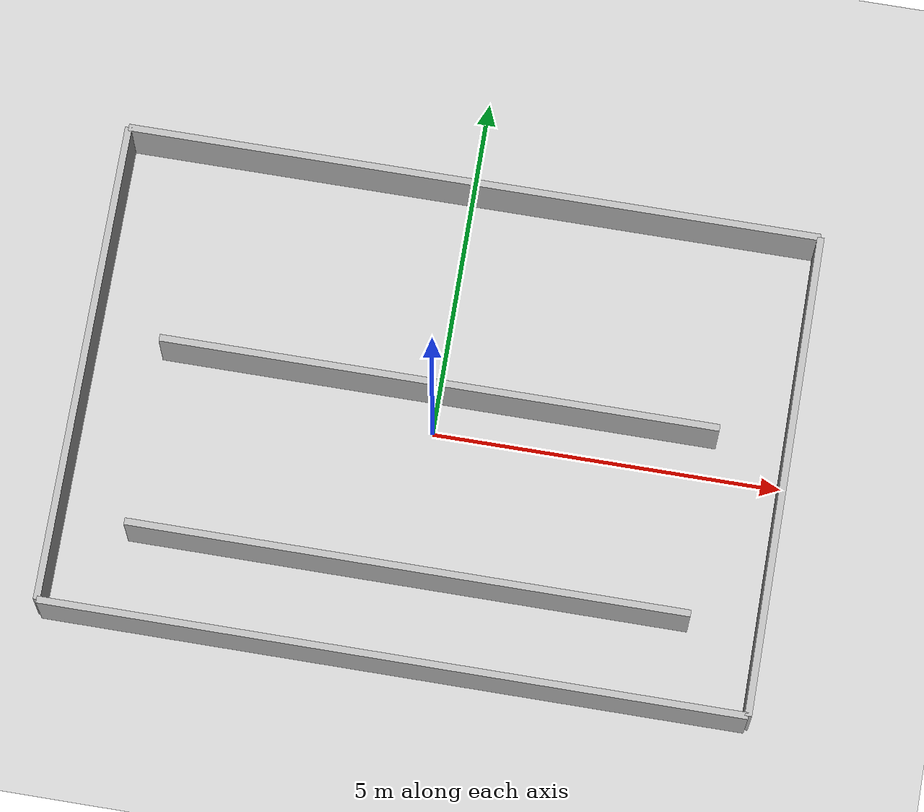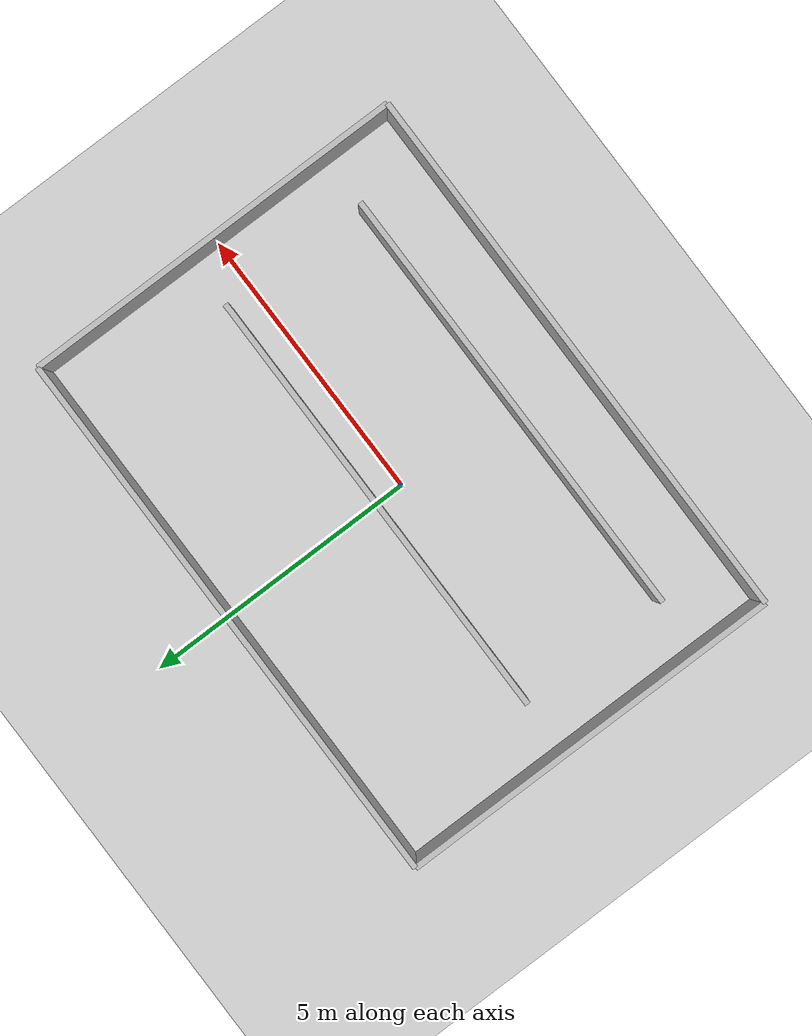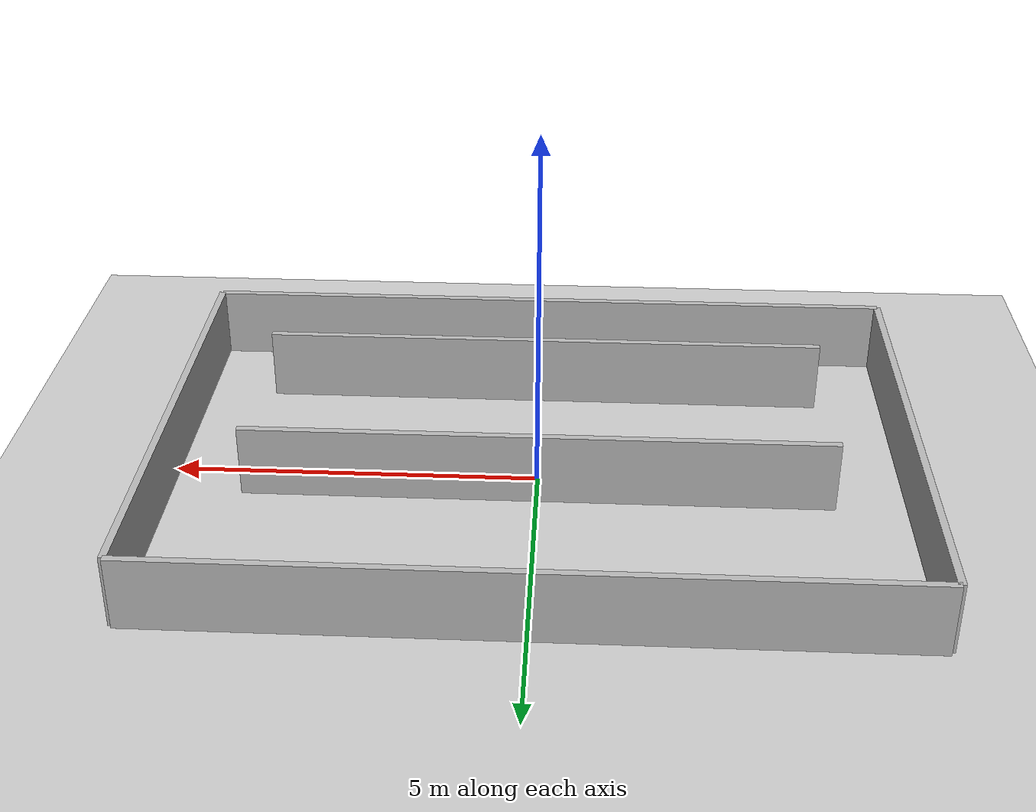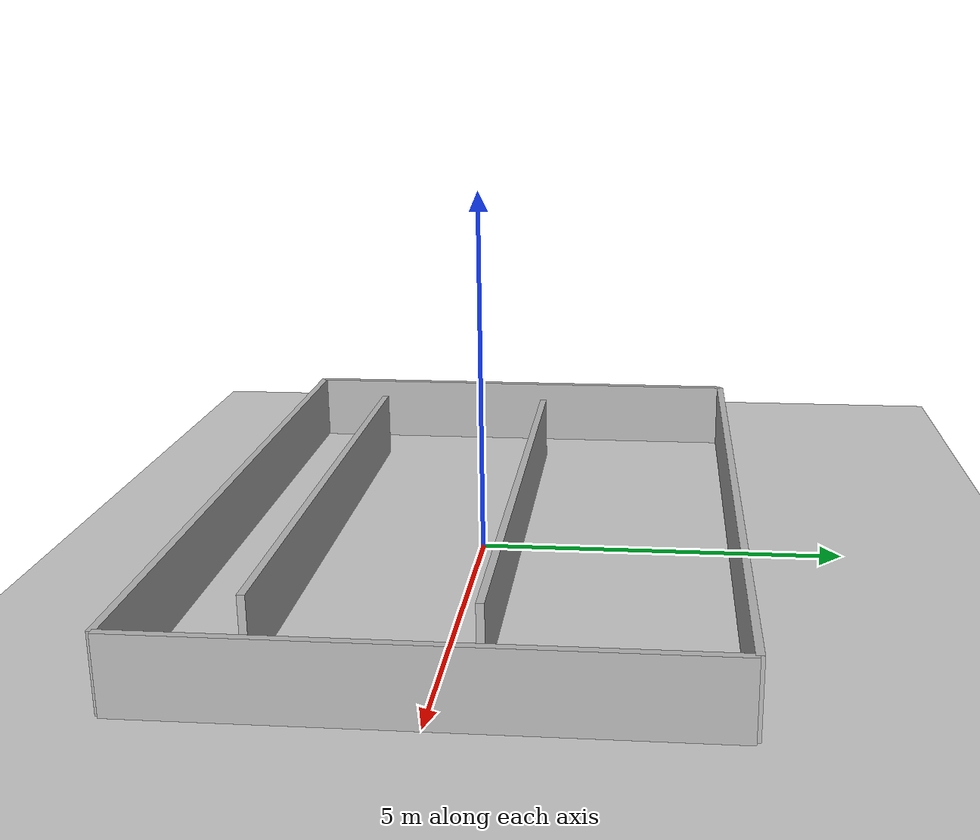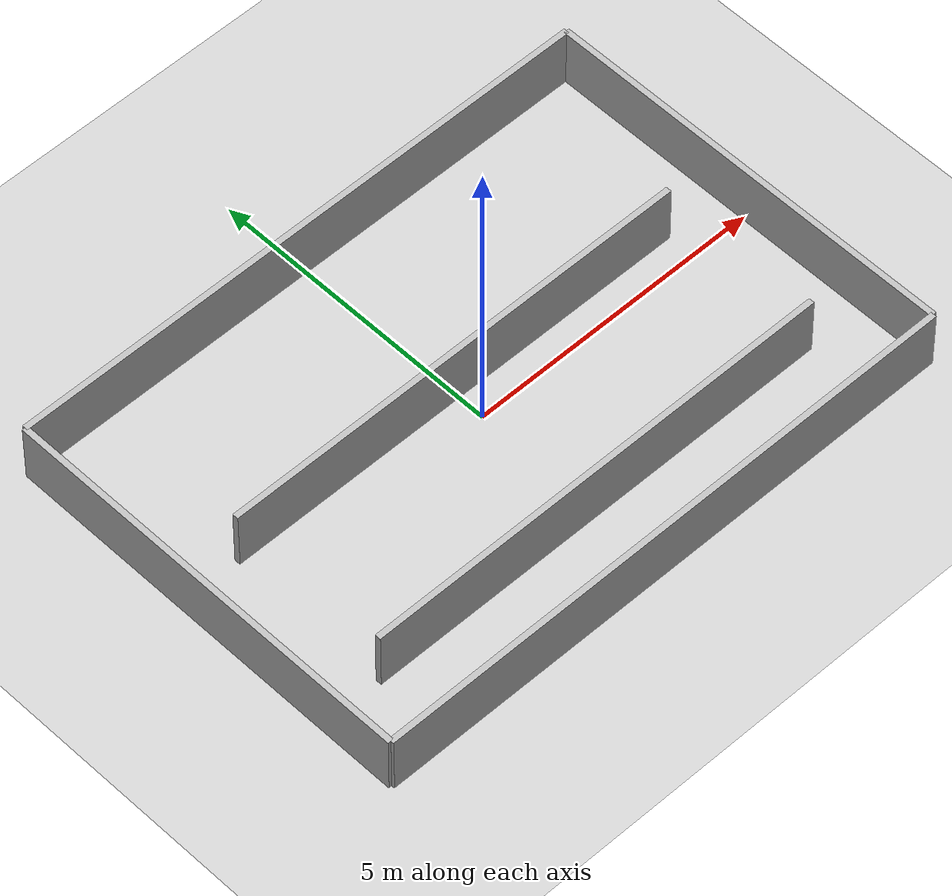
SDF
<?xml version="1.0" ?>
<sdf version="1.5">
  <world name="default">
    <include>
      <uri>model://ground_plane</uri>
    </include>
    <include>
      <uri>model://sun</uri>
    </include>

    <model name="wide_corridor_map">
      <static>true</static>
      <link name="link">

        <visual name="out_n">
          <pose>0 3.5 0.5 0 0 0</pose>
          <geometry><box><size>10 0.1 1</size></box></geometry>
        </visual>
        <visual name="out_s">
          <pose>0 -3.5 0.5 0 0 0</pose>
          <geometry><box><size>10 0.1 1</size></box></geometry>
        </visual>
        <visual name="out_w">
          <pose>-5 0 0.5 0 0 0</pose>
          <geometry><box><size>0.1 7 1</size></box></geometry>
        </visual>
        <visual name="out_e">
          <pose>5 0 0.5 0 0 0</pose>
          <geometry><box><size>0.1 7 1</size></box></geometry>
        </visual>

        <visual name="inner_wall_1">
          <pose>0 -2.2 0.5 0 0 0</pose>
          <geometry><box><size>8 0.1 1</size></box></geometry>
        </visual>

        <visual name="inner_wall_2">
          <pose>0 0.5 0.5 0 0 0</pose>
          <geometry><box><size>8 0.1 1</size></box></geometry>
        </visual>

        <collision name="c1"><pose>0 3.5 0.5 0 0 0</pose><geometry><box><size>10 0.1 1</size></box></geometry></collision>
        <collision name="c2"><pose>0 -3.5 0.5 0 0 0</pose><geometry><box><size>10 0.1 1</size></box></geometry></collision>
        <collision name="c3"><pose>-5 0 0.5 0 0 0</pose><geometry><box><size>0.1 7 1</size></box></geometry></collision>
        <collision name="c4"><pose>5 0 0.5 0 0 0</pose><geometry><box><size>0.1 7 1</size></box></geometry></collision>
        <collision name="c5"><pose>0 -2.2 0.5 0 0 0</pose><geometry><box><size>8 0.1 1</size></box></geometry></collision>
        <collision name="c6"><pose>0 0.5 0.5 0 0 0</pose><geometry><box><size>8 0.1 1</size></box></geometry></collision>
      </link>
    </model>

    <physics type="ode">
      <real_time_update_rate>1000.0</real_time_update_rate>
      <max_step_size>0.001</max_step_size>
    </physics>
  </world>
</sdf>
